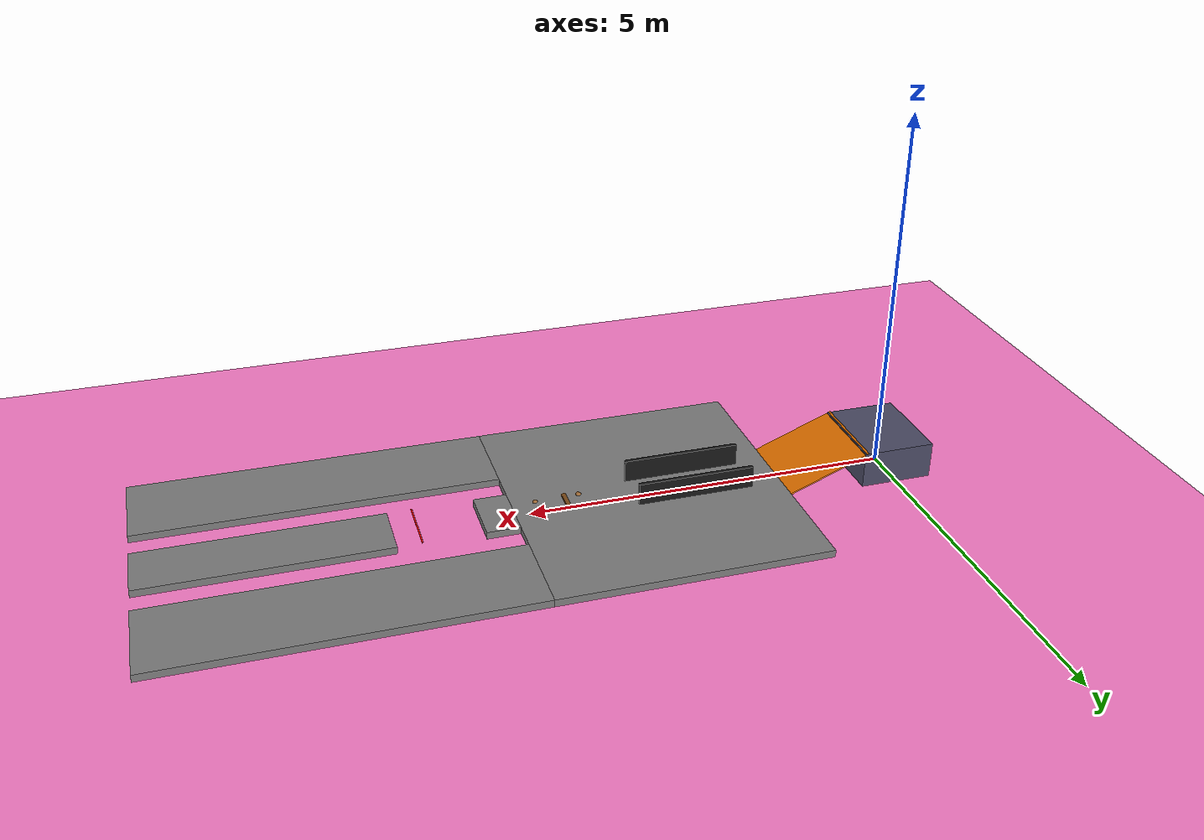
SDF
<?xml version="1.0" ?>
<sdf version="1.8">

    <world name="Safety_Poligon_Final">

        <scene>
            <ambient>0.1 0.1 0.5 1</ambient>
            <background>0.2 0.2 0.8 1</background>
            <shadows>true</shadows>
        </scene>

        <physics name="1ms" type="ignored">
            <max_step_size>0.02</max_step_size>
            <real_time_factor>1.0</real_time_factor>
        </physics>

        <plugin filename="gz-sim-physics-system" name="gz::sim::systems::Physics"/>
        <plugin filename="gz-sim-user-commands-system" name="gz::sim::systems::UserCommands"/>
        <plugin filename="gz-sim-scene-broadcaster-system" name="gz::sim::systems::SceneBroadcaster"/>
        <plugin filename="gz-sim-sensors-system" name="gz::sim::systems::Sensors"><render_engine>ogre2</render_engine></plugin>
        <plugin filename="gz-sim-contact-system" name="gz::sim::systems::Contact"></plugin>
        <plugin filename="gz-sim-imu-system" name="gz::sim::systems::Imu"></plugin>

        <light type="directional" name="sun">
            <cast_shadows>true</cast_shadows>
            <pose>0 0 10 0 0 0</pose>
            <diffuse>0.8 0.8 0.8 1</diffuse>
            <specular>0.2 0.2 0.2 1</specular>
            <direction>-0.5 0.1 -0.9</direction>
        </light>

        <model name="absolute_zero_ground">
            <static>true</static>
            <link name="link">
                <collision name="collision"><geometry><plane><normal>0 0 1</normal></plane></geometry></collision>
                <visual name="visual">
                    <geometry><plane><normal>0 0 1</normal><size>50 50</size></plane></geometry>
                    <material><ambient>1 0.5 0.8 1</ambient><diffuse>1 0.5 0.8 1</diffuse></material>
                </visual>
            </link>
        </model>

        <model name="spawn_hill_and_ramp">
            <static>true</static>

            <link name="spawn_platform">
                <pose>0 0 0.25 0 0 0</pose>
                <collision name="col"><geometry><box><size>1.0 1.2 0.5</size></box></geometry></collision>
                <visual name="vis"><geometry><box><size>1.0 1.2 0.5</size></box></geometry>
                    <material><ambient>0.3 0.3 0.4 1</ambient><diffuse>0.3 0.3 0.4 1</diffuse></material>
                </visual>
            </link>

            <link name="steep_ramp">
                <pose>1.05 0 0.26 0 0.38 0</pose>
                <collision name="col"><geometry><box><size>1.3 1.2 0.02</size></box></geometry></collision>
                <visual name="vis"><geometry><box><size>1.3 1.2 0.02</size></box></geometry>
                    <material><ambient>1 0.5 0 1</ambient><diffuse>1 0.5 0 1</diffuse></material>
                </visual>
            </link>
        </model>

        <model name="wide_ground_platform">
            <static>true</static>
            <pose>5.5 0 0.05 0 0 0</pose> <link name="main_floor_1">
                <pose>-2.1 0 0 0 0 0</pose>
                <collision name="col"><geometry><box><size>3.65 4.0 0.1</size></box></geometry></collision>
                <visual name="vis"><geometry><box><size>3.65 4.0 0.1</size></box></geometry>
                    <material><ambient>0.5 0.5 0.5 1</ambient><diffuse>0.5 0.5 0.5 1</diffuse></material>
                </visual>
            </link>

            <link name="floor_around_pit_left">
                <pose>2.15 1.4 0 0 0 0</pose>
                <collision name="col"><geometry><box><size>4.85 1.2 0.1</size></box></geometry></collision>
                <visual name="vis"><geometry><box><size>4.85 1.2 0.1</size></box></geometry><material><ambient>0.5 0.5 0.5 1</ambient></material></visual>
            </link>
            <link name="floor_around_pit_right">
                <pose>2.15 -1.4 0 0 0 0</pose>
                <collision name="col"><geometry><box><size>4.85 1.2 0.1</size></box></geometry></collision>
                <visual name="vis"><geometry><box><size>4.85 1.2 0.1</size></box></geometry><material><ambient>0.5 0.5 0.5 1</ambient></material></visual>
            </link>
            <link name="floor_pit_back">
                <pose>-0.05 0 0 0 0 0</pose>
                <collision name="col"><geometry><box><size>0.45 0.8 0.1</size></box></geometry></collision>
                <visual name="vis"><geometry><box><size>0.45 0.8 0.1</size></box></geometry><material><ambient>0.5 0.5 0.5 1</ambient></material></visual>
            </link>
            <link name="floor_pit_front">
                <pose>2.95 0 0 0 0 0</pose>
                <collision name="col"><geometry><box><size>3.25 0.8 0.1</size></box></geometry></collision>
                <visual name="vis"><geometry><box><size>3.25 0.8 0.1</size></box></geometry><material><ambient>0.5 0.5 0.5 1</ambient></material></visual>
            </link>
        </model>

        <model name="lidar_walls">
            <static>true</static>
            <pose>2.8 0 0.1 0 0 0</pose>

            <link name="left_wall">
                <pose>0 0.3 0.15 0 0 0</pose>
                <collision name="c"><geometry><box><size>1.6 0.05 0.3</size></box></geometry></collision>
                <visual name="v"><geometry><box><size>1.6 0.05 0.3</size></box></geometry>
                    <material><ambient>0.1 0.1 0.1 1</ambient><diffuse>0.1 0.1 0.1 1</diffuse></material>
                </visual>
            </link>

            <link name="right_wall">
                <pose>0 -0.3 0.15 0 0 0</pose>
                <collision name="c"><geometry><box><size>1.6 0.05 0.3</size></box></geometry></collision>
                <visual name="v"><geometry><box><size>1.6 0.05 0.3</size></box></geometry>
                    <material><ambient>0.1 0.1 0.1 1</ambient><diffuse>0.1 0.1 0.1 1</diffuse></material>
                </visual>
            </link>
        </model>

        <model name="stability_testing_stones">
            <static>true</static>
            <pose>4.6 0 0.1 0 0 0</pose>

            <link name="stone_l1">
                <pose>-0.5 0.12 -0.01 0 0 0</pose>
                <collision name="c"><geometry><sphere><radius>0.04</radius></sphere></geometry></collision>
                <visual name="v"><geometry><sphere><radius>0.04</radius></sphere></geometry><material><ambient>0.6 0.4 0.2 1</ambient></material></visual>
            </link>

            <link name="stone_r1">
                <pose>-0.3 -0.14 -0.01 0 0 0</pose>
                <collision name="c"><geometry><sphere><radius>0.04</radius></sphere></geometry></collision>
                <visual name="v"><geometry><sphere><radius>0.04</radius></sphere></geometry><material><ambient>0.6 0.4 0.2 1</ambient></material></visual>
            </link>

            <link name="stone_c1">
                <pose>-0.1 0.0 0.01 0 0 0</pose>
                <collision name="c"><geometry><box><size>0.06 0.35 0.03</size></box></geometry></collision>
                <visual name="v"><geometry><box><size>0.06 0.35 0.03</size></box></geometry><material><ambient>0.5 0.3 0.1 1</ambient></material></visual>
            </link>

            <link name="stone_l2">
                <pose>0.1 0.15 -0.015 0 0 0</pose>
                <collision name="c"><geometry><sphere><radius>0.035</radius></sphere></geometry></collision>
                <visual name="v"><geometry><sphere><radius>0.035</radius></sphere></geometry><material><ambient>0.6 0.4 0.2 1</ambient></material></visual>
            </link>

            <link name="stone_r2">
                <pose>0.3 -0.12 -0.012 0 0 0</pose>
                <collision name="c"><geometry><sphere><radius>0.038</radius></sphere></geometry></collision>
                <visual name="v"><geometry><sphere><radius>0.038</radius></sphere></geometry><material><ambient>0.6 0.4 0.2 1</ambient></material></visual>
            </link>
        </model>

        <model name="pit_warning_borders">
            <static>true</static>
            <pose>6.9 0 0.101 0 0 0</pose>
            <link name="borders">
                <visual name="b1"><pose>-0.4 0 0 0 0 0</pose><geometry><box><size>0.02 0.8 0.002</size></box></geometry><material><ambient>1 0 0 1</ambient></material></visual>
            </link>
        </model>

    </world>
</sdf>
